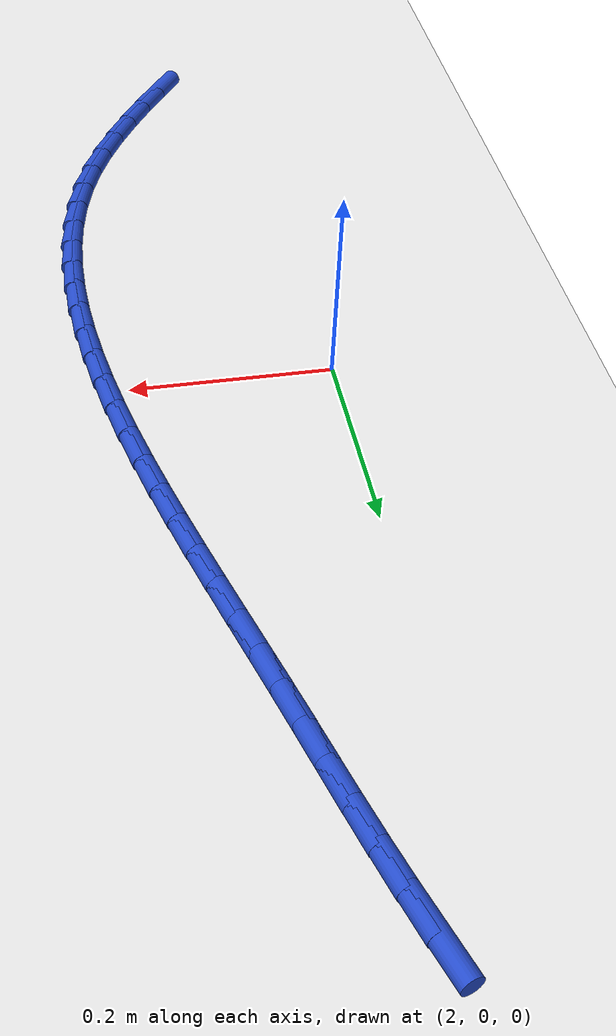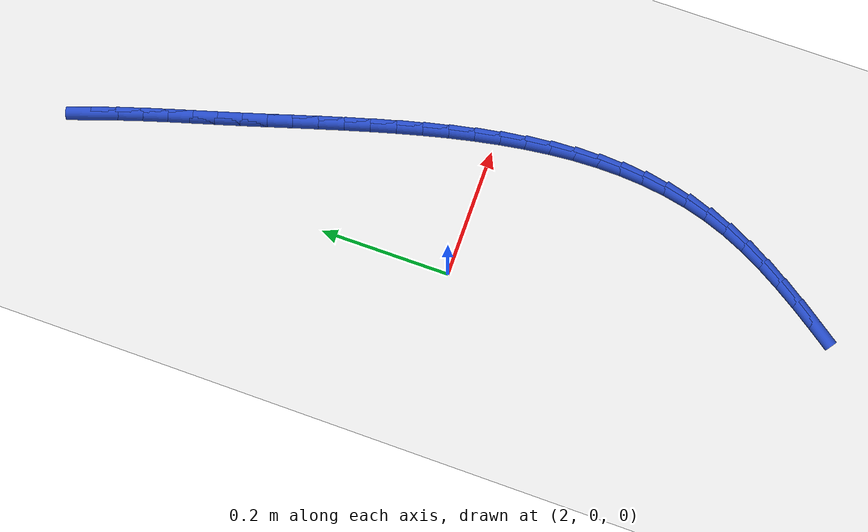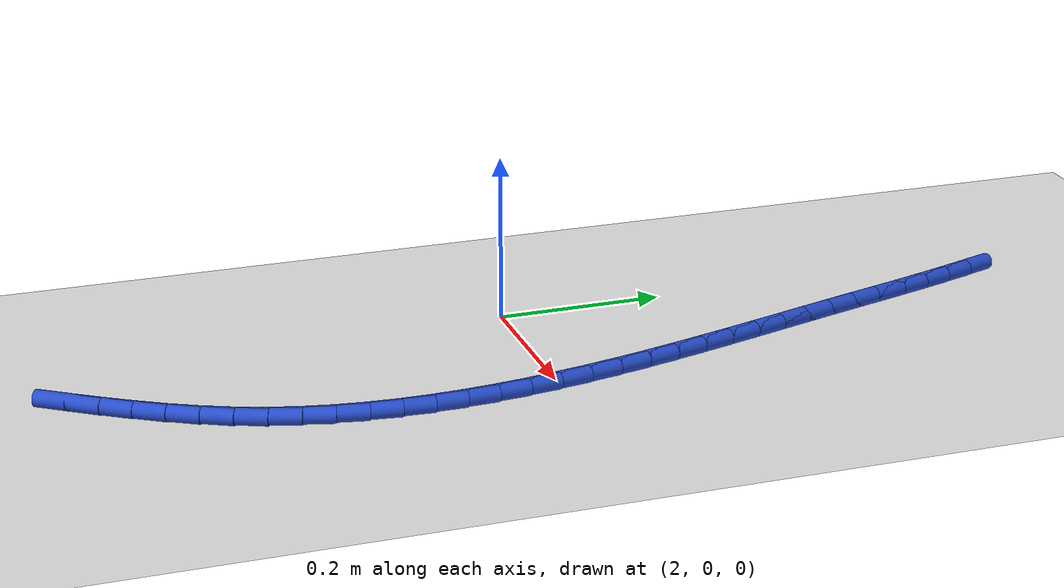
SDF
<sdf version="1.6">
 <world name="default">
  <model name="ground_plane">
   <static>1</static>
   <link name="link">
    <collision name="collision">
     <geometry><plane><normal>0 0 1</normal><size>100 100</size></plane></geometry>
     <surface><friction><ode><mu>100</mu><mu2>50</mu2></ode></friction></surface>
    </collision>
    <visual name="visual">
     <cast_shadows>0</cast_shadows>
     <geometry><plane><normal>0 0 1</normal><size>100 100</size></plane></geometry>
     <material>
      <script><uri>file://media/materials/scripts/gazebo.material</uri><name>Gazebo/WhiteGlow</name></script>
     </material>
    </visual>
   </link>
  </model>
  <model name="line">
   <link name="link_78">
    <pose>2.0543258429997335 0.5904795358713215 0.01 0 1.57 -1.242148853886375</pose>
    <collision name="collision">
     <geometry><cylinder><radius>0.01</radius><length>0.08</length></cylinder></geometry>
    </collision>
    <visual name="visual">
     <material>
      <script><name>Gazebo/Blue</name><uri>file://media/materials/scripts/gazebo.material</uri></script>
     </material>
     <geometry><cylinder><radius>0.01</radius><length>0.08</length></cylinder></geometry>
    </visual>
   </link>
   <link name="link_79">
    <pose>2.0665467626224636 0.5546425706697191 0.01 0 1.57 -1.260176175621361</pose>
    <collision name="collision">
     <geometry><cylinder><radius>0.01</radius><length>0.08</length></cylinder></geometry>
    </collision>
    <visual name="visual">
     <material>
      <script><name>Gazebo/Blue</name><uri>file://media/materials/scripts/gazebo.material</uri></script>
     </material>
     <geometry><cylinder><radius>0.01</radius><length>0.08</length></cylinder></geometry>
    </visual>
   </link>
   <link name="link_80">
    <pose>2.0780486508105103 0.5188124186376855 0.01 0 1.57 -1.274444658479171</pose>
    <collision name="collision">
     <geometry><cylinder><radius>0.01</radius><length>0.08</length></cylinder></geometry>
    </collision>
    <visual name="visual">
     <material>
      <script><name>Gazebo/Blue</name><uri>file://media/materials/scripts/gazebo.material</uri></script>
     </material>
     <geometry><cylinder><radius>0.01</radius><length>0.08</length></cylinder></geometry>
    </visual>
   </link>
   <link name="link_81">
    <pose>2.0889741928671937 0.4830312438104072 0.01 0 1.57 -1.2832729525572875</pose>
    <collision name="collision">
     <geometry><cylinder><radius>0.01</radius><length>0.08</length></cylinder></geometry>
    </collision>
    <visual name="visual">
     <material>
      <script><name>Gazebo/Blue</name><uri>file://media/materials/scripts/gazebo.material</uri></script>
     </material>
     <geometry><cylinder><radius>0.01</radius><length>0.08</length></cylinder></geometry>
    </visual>
   </link>
   <link name="link_82">
    <pose>2.0995770349685285 0.4471766244476499 0.01 0 1.57 -1.2863221765230024</pose>
    <collision name="collision">
     <geometry><cylinder><radius>0.01</radius><length>0.08</length></cylinder></geometry>
    </collision>
    <visual name="visual">
     <material>
      <script><name>Gazebo/Blue</name><uri>file://media/materials/scripts/gazebo.material</uri></script>
     </material>
     <geometry><cylinder><radius>0.01</radius><length>0.08</length></cylinder></geometry>
    </visual>
   </link>
   <link name="link_83">
    <pose>2.1101241440133265 0.411106380479623 0.01 0 1.57 -1.2836412811550717</pose>
    <collision name="collision">
     <geometry><cylinder><radius>0.01</radius><length>0.08</length></cylinder></geometry>
    </collision>
    <visual name="visual">
     <material>
      <script><name>Gazebo/Blue</name><uri>file://media/materials/scripts/gazebo.material</uri></script>
     </material>
     <geometry><cylinder><radius>0.01</radius><length>0.08</length></cylinder></geometry>
    </visual>
   </link>
   <link name="link_84">
    <pose>2.120881886779338 0.37467861363230387 0.01 0 1.57 -1.2780586465992638</pose>
    <collision name="collision">
     <geometry><cylinder><radius>0.01</radius><length>0.08</length></cylinder></geometry>
    </collision>
    <visual name="visual">
     <material>
      <script><name>Gazebo/Blue</name><uri>file://media/materials/scripts/gazebo.material</uri></script>
     </material>
     <geometry><cylinder><radius>0.01</radius><length>0.08</length></cylinder></geometry>
    </visual>
   </link>
   <link name="link_85">
    <pose>2.131994307797066 0.3378088638614558 0.01 0 1.57 -1.2754092566540112</pose>
    <collision name="collision">
     <geometry><cylinder><radius>0.01</radius><length>0.08</length></cylinder></geometry>
    </collision>
    <visual name="visual">
     <material>
      <script><name>Gazebo/Blue</name><uri>file://media/materials/scripts/gazebo.material</uri></script>
     </material>
     <geometry><cylinder><radius>0.01</radius><length>0.08</length></cylinder></geometry>
    </visual>
   </link>
   <link name="link_86">
    <pose>2.1433349041097305 0.3005397107177847 0.01 0 1.57 -1.2763335382882288</pose>
    <collision name="collision">
     <geometry><cylinder><radius>0.01</radius><length>0.08</length></cylinder></geometry>
    </collision>
    <visual name="visual">
     <material>
      <script><name>Gazebo/Blue</name><uri>file://media/materials/scripts/gazebo.material</uri></script>
     </material>
     <geometry><cylinder><radius>0.01</radius><length>0.08</length></cylinder></geometry>
    </visual>
   </link>
   <link name="link_87">
    <pose>2.1547409303637437 0.2629307519082426 0.01 0 1.57 -1.2807454588661369</pose>
    <collision name="collision">
     <geometry><cylinder><radius>0.01</radius><length>0.08</length></cylinder></geometry>
    </collision>
    <visual name="visual">
     <material>
      <script><name>Gazebo/Blue</name><uri>file://media/materials/scripts/gazebo.material</uri></script>
     </material>
     <geometry><cylinder><radius>0.01</radius><length>0.08</length></cylinder></geometry>
    </visual>
   </link>
   <link name="link_88">
    <pose>2.166049641205515 0.22504158513978292 0.01 0 1.57 -1.2886160038307966</pose>
    <collision name="collision">
     <geometry><cylinder><radius>0.01</radius><length>0.08</length></cylinder></geometry>
    </collision>
    <visual name="visual">
     <material>
      <script><name>Gazebo/Blue</name><uri>file://media/materials/scripts/gazebo.material</uri></script>
     </material>
     <geometry><cylinder><radius>0.01</radius><length>0.08</length></cylinder></geometry>
    </visual>
   </link>
   <link name="link_89">
    <pose>2.177098291281452 0.1869318081193586 0.01 0 1.57 -1.2999690939753588</pose>
    <collision name="collision">
     <geometry><cylinder><radius>0.01</radius><length>0.08</length></cylinder></geometry>
    </collision>
    <visual name="visual">
     <material>
      <script><name>Gazebo/Blue</name><uri>file://media/materials/scripts/gazebo.material</uri></script>
     </material>
     <geometry><cylinder><radius>0.01</radius><length>0.08</length></cylinder></geometry>
    </visual>
   </link>
   <link name="link_90">
    <pose>2.187724135237964 0.14866101855392283 0.01 0 1.57 -1.3148783625978127</pose>
    <collision name="collision">
     <geometry><cylinder><radius>0.01</radius><length>0.08</length></cylinder></geometry>
    </collision>
    <visual name="visual">
     <material>
      <script><name>Gazebo/Blue</name><uri>file://media/materials/scripts/gazebo.material</uri></script>
     </material>
     <geometry><cylinder><radius>0.01</radius><length>0.08</length></cylinder></geometry>
    </visual>
   </link>
   <link name="link_91">
    <pose>2.197764427721462 0.1102888141504279 0.01 0 1.57 -1.3334643607453698</pose>
    <collision name="collision">
     <geometry><cylinder><radius>0.01</radius><length>0.08</length></cylinder></geometry>
    </collision>
    <visual name="visual">
     <material>
      <script><name>Gazebo/Blue</name><uri>file://media/materials/scripts/gazebo.material</uri></script>
     </material>
     <geometry><cylinder><radius>0.01</radius><length>0.08</length></cylinder></geometry>
    </visual>
   </link>
   <link name="link_92">
    <pose>2.2070564233783534 0.07187479261582705 0.01 0 1.57 -1.355891632926754</pose>
    <collision name="collision">
     <geometry><cylinder><radius>0.01</radius><length>0.08</length></cylinder></geometry>
    </collision>
    <visual name="visual">
     <material>
      <script><name>Gazebo/Blue</name><uri>file://media/materials/scripts/gazebo.material</uri></script>
     </material>
     <geometry><cylinder><radius>0.01</radius><length>0.08</length></cylinder></geometry>
    </visual>
   </link>
   <link name="link_93">
    <pose>2.215437376855049 0.0334785516570736 0.01 0 1.57 -1.3823649295443738</pose>
    <collision name="collision">
     <geometry><cylinder><radius>0.01</radius><length>0.08</length></cylinder></geometry>
    </collision>
    <visual name="visual">
     <material>
      <script><name>Gazebo/Blue</name><uri>file://media/materials/scripts/gazebo.material</uri></script>
     </material>
     <geometry><cylinder><radius>0.01</radius><length>0.08</length></cylinder></geometry>
    </visual>
   </link>
   <link name="link_94">
    <pose>2.222744542797957 -0.0048403110188803 0.01 0 1.57 -1.4131235849056318</pose>
    <collision name="collision">
     <geometry><cylinder><radius>0.01</radius><length>0.08</length></cylinder></geometry>
    </collision>
    <visual name="visual">
     <material>
      <script><name>Gazebo/Blue</name><uri>file://media/materials/scripts/gazebo.material</uri></script>
     </material>
     <geometry><cylinder><radius>0.01</radius><length>0.08</length></cylinder></geometry>
    </visual>
   </link>
   <link name="link_95">
    <pose>2.2288151758534873 -0.04302219770508134 0.01 0 1.57 -1.4484327954669345</pose>
    <collision name="collision">
     <geometry><cylinder><radius>0.01</radius><length>0.08</length></cylinder></geometry>
    </collision>
    <visual name="visual">
     <material>
      <script><name>Gazebo/Blue</name><uri>file://media/materials/scripts/gazebo.material</uri></script>
     </material>
     <geometry><cylinder><radius>0.01</radius><length>0.08</length></cylinder></geometry>
    </visual>
   </link>
   <link name="link_96">
    <pose>2.233486530668049 -0.0810075106945766 0.01 0 1.57 -1.488570217349291</pose>
    <collision name="collision">
     <geometry><cylinder><radius>0.01</radius><length>0.08</length></cylinder></geometry>
    </collision>
    <visual name="visual">
     <material>
      <script><name>Gazebo/Blue</name><uri>file://media/materials/scripts/gazebo.material</uri></script>
     </material>
     <geometry><cylinder><radius>0.01</radius><length>0.08</length></cylinder></geometry>
    </visual>
   </link>
   <link name="link_97">
    <pose>2.236595861888052 -0.11873665228041315 0.01 0 1.57 -1.5338060574594128</pose>
    <collision name="collision">
     <geometry><cylinder><radius>0.01</radius><length>0.08</length></cylinder></geometry>
    </collision>
    <visual name="visual">
     <material>
      <script><name>Gazebo/Blue</name><uri>file://media/materials/scripts/gazebo.material</uri></script>
     </material>
     <geometry><cylinder><radius>0.01</radius><length>0.08</length></cylinder></geometry>
    </visual>
   </link>
   <link name="link_98">
    <pose>2.237980424159904 -0.15615002475563722 0.01 0 1.57 1.557217811704653</pose>
    <collision name="collision">
     <geometry><cylinder><radius>0.01</radius><length>0.08</length></cylinder></geometry>
    </collision>
    <visual name="visual">
     <material>
      <script><name>Gazebo/Blue</name><uri>file://media/materials/scripts/gazebo.material</uri></script>
     </material>
     <geometry><cylinder><radius>0.01</radius><length>0.08</length></cylinder></geometry>
    </visual>
   </link>
   <link name="link_99">
    <pose>2.2374774721300157 -0.1931880304132976 0.01 0 1.57 1.5011550440770376</pose>
    <collision name="collision">
     <geometry><cylinder><radius>0.01</radius><length>0.08</length></cylinder></geometry>
    </collision>
    <visual name="visual">
     <material>
      <script><name>Gazebo/Blue</name><uri>file://media/materials/scripts/gazebo.material</uri></script>
     </material>
     <geometry><cylinder><radius>0.01</radius><length>0.08</length></cylinder></geometry>
    </visual>
   </link>
   <link name="link_100">
    <pose>2.2349242604447963 -0.2297910715464405 0.01 0 1.57 1.4395578569089784</pose>
    <collision name="collision">
     <geometry><cylinder><radius>0.01</radius><length>0.08</length></cylinder></geometry>
    </collision>
    <visual name="visual">
     <material>
      <script><name>Gazebo/Blue</name><uri>file://media/materials/scripts/gazebo.material</uri></script>
     </material>
     <geometry><cylinder><radius>0.01</radius><length>0.08</length></cylinder></geometry>
    </visual>
   </link>
   <link name="link_101">
    <pose>2.2301580437506545 -0.265899550448113 0.01 0 1.57 1.3725597454332226</pose>
    <collision name="collision">
     <geometry><cylinder><radius>0.01</radius><length>0.08</length></cylinder></geometry>
    </collision>
    <visual name="visual">
     <material>
      <script><name>Gazebo/Blue</name><uri>file://media/materials/scripts/gazebo.material</uri></script>
     </material>
     <geometry><cylinder><radius>0.01</radius><length>0.08</length></cylinder></geometry>
    </visual>
   </link>
   <link name="link_102">
    <pose>2.223016076694 -0.3014538694113621 0.01 0 1.57 1.300520456612914</pose>
    <collision name="collision">
     <geometry><cylinder><radius>0.01</radius><length>0.08</length></cylinder></geometry>
    </collision>
    <visual name="visual">
     <material>
      <script><name>Gazebo/Blue</name><uri>file://media/materials/scripts/gazebo.material</uri></script>
     </material>
     <geometry><cylinder><radius>0.01</radius><length>0.08</length></cylinder></geometry>
    </visual>
   </link>
   <link name="link_103">
    <pose>2.2133356139212417 -0.33639443072923497 0.01 0 1.57 1.224129492449038</pose>
    <collision name="collision">
     <geometry><cylinder><radius>0.01</radius><length>0.08</length></cylinder></geometry>
    </collision>
    <visual name="visual">
     <material>
      <script><name>Gazebo/Blue</name><uri>file://media/materials/scripts/gazebo.material</uri></script>
     </material>
     <geometry><cylinder><radius>0.01</radius><length>0.08</length></cylinder></geometry>
    </visual>
   </link>
   <link name="link_104">
    <pose>2.2009561527352655 -0.37066228757127667 0.01 0 1.57 1.1497498741803465</pose>
    <collision name="collision">
     <geometry><cylinder><radius>0.01</radius><length>0.08</length></cylinder></geometry>
    </collision>
    <visual name="visual">
     <material>
      <script><name>Gazebo/Blue</name><uri>file://media/materials/scripts/gazebo.material</uri></script>
     </material>
     <geometry><cylinder><radius>0.01</radius><length>0.08</length></cylinder></geometry>
    </visual>
   </link>
   <link name="link_105">
    <pose>2.18591232916196 -0.40425512737534564 0.01 0 1.57 1.0874233480584985</pose>
    <collision name="collision">
     <geometry><cylinder><radius>0.01</radius><length>0.08</length></cylinder></geometry>
    </collision>
    <visual name="visual">
     <material>
      <script><name>Gazebo/Blue</name><uri>file://media/materials/scripts/gazebo.material</uri></script>
     </material>
     <geometry><cylinder><radius>0.01</radius><length>0.08</length></cylinder></geometry>
    </visual>
   </link>
   <link name="link_106">
    <pose>2.1685824405128407 -0.4372703769091516 0.01 0 1.57 1.0377393058286928</pose>
    <collision name="collision">
     <geometry><cylinder><radius>0.01</radius><length>0.08</length></cylinder></geometry>
    </collision>
    <visual name="visual">
     <material>
      <script><name>Gazebo/Blue</name><uri>file://media/materials/scripts/gazebo.material</uri></script>
     </material>
     <geometry><cylinder><radius>0.01</radius><length>0.08</length></cylinder></geometry>
    </visual>
   </link>
   <link name="link_107">
    <pose>2.1493797476318215 -0.4698156102553193 0.01 0 1.57 1.0000461243900507</pose>
    <collision name="collision">
     <geometry><cylinder><radius>0.01</radius><length>0.08</length></cylinder></geometry>
    </collision>
    <visual name="visual">
     <material>
      <script><name>Gazebo/Blue</name><uri>file://media/materials/scripts/gazebo.material</uri></script>
     </material>
     <geometry><cylinder><radius>0.01</radius><length>0.08</length></cylinder></geometry>
    </visual>
   </link>
   <link name="link_108">
    <pose>2.128717511362818 -0.5019984014964751 0.01 0 1.57 0.9736566306308679</pose>
    <collision name="collision">
     <geometry><cylinder><radius>0.01</radius><length>0.08</length></cylinder></geometry>
    </collision>
    <visual name="visual">
     <material>
      <script><name>Gazebo/Blue</name><uri>file://media/materials/scripts/gazebo.material</uri></script>
     </material>
     <geometry><cylinder><radius>0.01</radius><length>0.08</length></cylinder></geometry>
    </visual>
   </link>
   <link name="link_109">
    <pose>2.1070084853033726 -0.5339259776748866 0.01 0 1.57 0.9539237561120567</pose>
    <collision name="collision">
     <geometry><cylinder><radius>0.01</radius><length>0.08</length></cylinder></geometry>
    </collision>
    <visual name="visual">
     <material>
      <script><name>Gazebo/Blue</name><uri>file://media/materials/scripts/gazebo.material</uri></script>
     </material>
     <geometry><cylinder><radius>0.01</radius><length>0.08</length></cylinder></geometry>
    </visual>
   </link>
  </model>
 </world>
</sdf>
